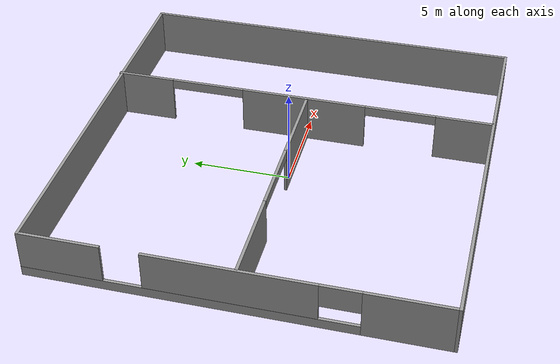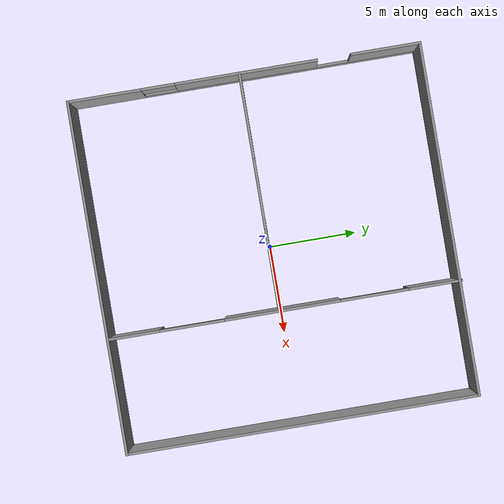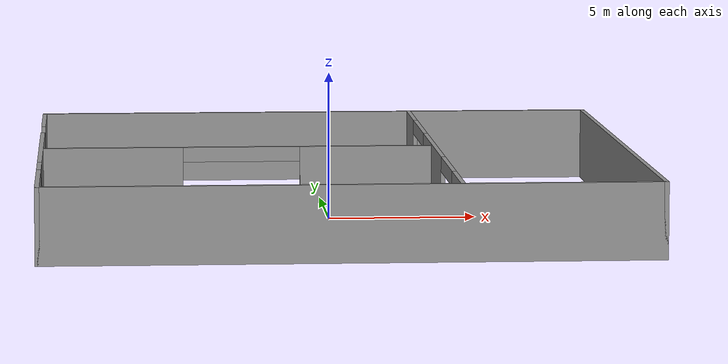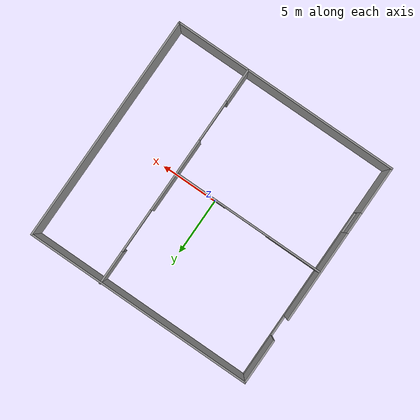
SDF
<?xml version='1.0'?>
<sdf version='1.7'>
  <model name='twohouse'>
    <pose>0.143288 0.205894 0 0 -0 0</pose>
    <link name='Wall_11'>
      <collision name='Wall_11_Collision'>
        <geometry>
          <box>
            <size>20 0.15 2.5</size>
          </box>
        </geometry>
        <pose>0 0 1.25 0 -0 0</pose>
      </collision>
      <visual name='Wall_11_Visual'>
        <pose>0 0 1.25 0 -0 0</pose>
        <geometry>
          <box>
            <size>20 0.15 2.5</size>
          </box>
        </geometry>
        <material>
          <script>
            <uri>file://media/materials/scripts/gazebo.material</uri>
            <name>Gazebo/Grey</name>
          </script>
          <ambient>1 1 1 1</ambient>
        </material>
        <meta>
          <layer>0</layer>
        </meta>
      </visual>
      <pose>-0 -9.95811 0 0 -0 0</pose>
    </link>
    <link name='Wall_13'>
      <pose>3.47079 0.033112 0 0 -0 -1.5708</pose>
      <visual name='Wall_13_Visual_0'>
        <pose>-8.49724 0 1.25 0 -0 0</pose>
        <geometry>
          <box>
            <size>3.00553 0.15 2.5</size>
          </box>
        </geometry>
        <material>
          <script>
            <uri>file://media/materials/scripts/gazebo.material</uri>
            <name>Gazebo/Grey</name>
          </script>
          <ambient>1 1 1 1</ambient>
        </material>
        <meta>
          <layer>0</layer>
        </meta>
      </visual>
      <collision name='Wall_13_Collision_0'>
        <geometry>
          <box>
            <size>3.00553 0.15 2.5</size>
          </box>
        </geometry>
        <pose>-8.49724 0 1.25 0 -0 0</pose>
      </collision>
      <visual name='Wall_13_Visual_1'>
        <pose>0.130698 0 1.25 0 -0 0</pose>
        <geometry>
          <box>
            <size>6.54383 0.15 2.5</size>
          </box>
        </geometry>
        <material>
          <script>
            <uri>file://media/materials/scripts/gazebo.material</uri>
            <name>Gazebo/Grey</name>
          </script>
          <ambient>1 1 1 1</ambient>
        </material>
        <meta>
          <layer>0</layer>
        </meta>
      </visual>
      <collision name='Wall_13_Collision_1'>
        <geometry>
          <box>
            <size>6.54383 0.15 2.5</size>
          </box>
        </geometry>
        <pose>0.130698 0 1.25 0 -0 0</pose>
      </collision>
      <visual name='Wall_13_Visual_2'>
        <pose>8.52679 0 1.25 0 -0 0</pose>
        <geometry>
          <box>
            <size>2.94641 0.15 2.5</size>
          </box>
        </geometry>
        <material>
          <script>
            <uri>file://media/materials/scripts/gazebo.material</uri>
            <name>Gazebo/Grey</name>
          </script>
          <ambient>1 1 1 1</ambient>
        </material>
        <meta>
          <layer>0</layer>
        </meta>
      </visual>
      <collision name='Wall_13_Collision_2'>
        <geometry>
          <box>
            <size>2.94641 0.15 2.5</size>
          </box>
        </geometry>
        <pose>8.52679 0 1.25 0 -0 0</pose>
      </collision>
      <visual name='Wall_13_Visual_3'>
        <pose>-5.06784 0 2.25 0 -0 0</pose>
        <geometry>
          <box>
            <size>3.85326 0.15 0.5</size>
          </box>
        </geometry>
        <material>
          <script>
            <uri>file://media/materials/scripts/gazebo.material</uri>
            <name>Gazebo/Grey</name>
          </script>
          <ambient>1 1 1 1</ambient>
        </material>
        <meta>
          <layer>0</layer>
        </meta>
      </visual>
      <collision name='Wall_13_Collision_3'>
        <geometry>
          <box>
            <size>3.85326 0.15 0.5</size>
          </box>
        </geometry>
        <pose>-5.06784 0 2.25 0 -0 0</pose>
      </collision>
      <visual name='Wall_13_Visual_4'>
        <pose>5.2281 0 2.25 0 -0 0</pose>
        <geometry>
          <box>
            <size>3.65098 0.15 0.5</size>
          </box>
        </geometry>
        <material>
          <script>
            <uri>file://media/materials/scripts/gazebo.material</uri>
            <name>Gazebo/Grey</name>
          </script>
          <ambient>1 1 1 1</ambient>
        </material>
        <meta>
          <layer>0</layer>
        </meta>
      </visual>
      <collision name='Wall_13_Collision_4'>
        <geometry>
          <box>
            <size>3.65098 0.15 0.5</size>
          </box>
        </geometry>
        <pose>5.2281 0 2.25 0 -0 0</pose>
      </collision>
    </link>
    <link name='Wall_16'>
      <pose>-3.2653 -0.277149 0 0 -0 3.14159</pose>
      <visual name='Wall_16_Visual_0'>
        <pose>-4.37677 0 1.25 0 -0 0</pose>
        <geometry>
          <box>
            <size>4.49647 0.15 2.5</size>
          </box>
        </geometry>
        <material>
          <script>
            <uri>file://media/materials/scripts/gazebo.material</uri>
            <name>Gazebo/Grey</name>
          </script>
          <ambient>1 1 1 1</ambient>
        </material>
        <meta>
          <layer>0</layer>
        </meta>
      </visual>
      <collision name='Wall_16_Collision_0'>
        <geometry>
          <box>
            <size>4.49647 0.15 2.5</size>
          </box>
        </geometry>
        <pose>-4.37677 0 1.25 0 -0 0</pose>
      </collision>
      <visual name='Wall_16_Visual_1'>
        <pose>4.23656 0 1.25 0 -0 0</pose>
        <geometry>
          <box>
            <size>4.77688 0.15 2.5</size>
          </box>
        </geometry>
        <material>
          <script>
            <uri>file://media/materials/scripts/gazebo.material</uri>
            <name>Gazebo/Grey</name>
          </script>
          <ambient>1 1 1 1</ambient>
        </material>
        <meta>
          <layer>0</layer>
        </meta>
      </visual>
      <collision name='Wall_16_Collision_1'>
        <geometry>
          <box>
            <size>4.77688 0.15 2.5</size>
          </box>
        </geometry>
        <pose>4.23656 0 1.25 0 -0 0</pose>
      </collision>
      <visual name='Wall_16_Visual_2'>
        <pose>-0.140208 0 2.25 0 -0 0</pose>
        <geometry>
          <box>
            <size>3.97665 0.15 0.5</size>
          </box>
        </geometry>
        <material>
          <script>
            <uri>file://media/materials/scripts/gazebo.material</uri>
            <name>Gazebo/Grey</name>
          </script>
          <ambient>1 1 1 1</ambient>
        </material>
        <meta>
          <layer>0</layer>
        </meta>
      </visual>
      <collision name='Wall_16_Collision_2'>
        <geometry>
          <box>
            <size>3.97665 0.15 0.5</size>
          </box>
        </geometry>
        <pose>-0.140208 0 2.25 0 -0 0</pose>
      </collision>
    </link>
    <link name='Wall_7'>
      <pose>-9.925 -0.033113 0 0 -0 1.5708</pose>
      <visual name='Wall_7_Visual_0'>
        <pose>-7.89219 0 1.25 0 -0 0</pose>
        <geometry>
          <box>
            <size>4.21562 0.15 2.5</size>
          </box>
        </geometry>
        <material>
          <script>
            <uri>file://media/materials/scripts/gazebo.material</uri>
            <name>Gazebo/Grey</name>
          </script>
          <ambient>1 1 1 1</ambient>
        </material>
        <meta>
          <layer>0</layer>
        </meta>
      </visual>
      <collision name='Wall_7_Collision_0'>
        <geometry>
          <box>
            <size>4.21562 0.15 2.5</size>
          </box>
        </geometry>
        <pose>-7.89219 0 1.25 0 -0 0</pose>
      </collision>
      <visual name='Wall_7_Visual_1'>
        <pose>2.10781 0 0.25 0 -0 0</pose>
        <geometry>
          <box>
            <size>15.7844 0.15 0.5</size>
          </box>
        </geometry>
        <material>
          <script>
            <uri>file://media/materials/scripts/gazebo.material</uri>
            <name>Gazebo/Grey</name>
          </script>
          <ambient>1 1 1 1</ambient>
        </material>
        <meta>
          <layer>0</layer>
        </meta>
      </visual>
      <collision name='Wall_7_Collision_1'>
        <geometry>
          <box>
            <size>15.7844 0.15 0.5</size>
          </box>
        </geometry>
        <pose>2.10781 0 0.25 0 -0 0</pose>
      </collision>
      <visual name='Wall_7_Visual_2'>
        <pose>0.137806 0 1.5 0 -0 0</pose>
        <geometry>
          <box>
            <size>8.05977 0.15 2</size>
          </box>
        </geometry>
        <material>
          <script>
            <uri>file://media/materials/scripts/gazebo.material</uri>
            <name>Gazebo/Grey</name>
          </script>
          <ambient>1 1 1 1</ambient>
        </material>
        <meta>
          <layer>0</layer>
        </meta>
      </visual>
      <collision name='Wall_7_Collision_2'>
        <geometry>
          <box>
            <size>8.05977 0.15 2</size>
          </box>
        </geometry>
        <pose>0.137806 0 1.5 0 -0 0</pose>
      </collision>
      <visual name='Wall_7_Visual_3'>
        <pose>8.00977 0 1.5 0 -0 0</pose>
        <geometry>
          <box>
            <size>3.98046 0.15 2</size>
          </box>
        </geometry>
        <material>
          <script>
            <uri>file://media/materials/scripts/gazebo.material</uri>
            <name>Gazebo/Grey</name>
          </script>
          <ambient>1 1 1 1</ambient>
        </material>
        <meta>
          <layer>0</layer>
        </meta>
      </visual>
      <collision name='Wall_7_Collision_3'>
        <geometry>
          <box>
            <size>3.98046 0.15 2</size>
          </box>
        </geometry>
        <pose>8.00977 0 1.5 0 -0 0</pose>
      </collision>
      <visual name='Wall_7_Visual_4'>
        <pose>-4.83823 0 1.9 0 -0 0</pose>
        <geometry>
          <box>
            <size>1.8923 0.15 1.2</size>
          </box>
        </geometry>
        <material>
          <script>
            <uri>file://media/materials/scripts/gazebo.material</uri>
            <name>Gazebo/Grey</name>
          </script>
          <ambient>1 1 1 1</ambient>
        </material>
        <meta>
          <layer>0</layer>
        </meta>
      </visual>
      <collision name='Wall_7_Collision_4'>
        <geometry>
          <box>
            <size>1.8923 0.15 1.2</size>
          </box>
        </geometry>
        <pose>-4.83823 0 1.9 0 -0 0</pose>
      </collision>
      <visual name='Wall_7_Visual_5'>
        <pose>4.16769 0 1.9 0 -0 0</pose>
        <geometry>
          <box>
            <size>0 0.15 1.2</size>
          </box>
        </geometry>
        <material>
          <script>
            <uri>file://media/materials/scripts/gazebo.material</uri>
            <name>Gazebo/Grey</name>
          </script>
          <ambient>1 1 1 1</ambient>
        </material>
        <meta>
          <layer>0</layer>
        </meta>
      </visual>
      <collision name='Wall_7_Collision_5'>
        <geometry>
          <box>
            <size>0 0.15 1.2</size>
          </box>
        </geometry>
        <pose>4.16769 0 1.9 0 -0 0</pose>
      </collision>
    </link>
    <link name='Wall_8'>
      <collision name='Wall_8_Collision'>
        <geometry>
          <box>
            <size>20 0.15 2.5</size>
          </box>
        </geometry>
        <pose>0 0 1.25 0 -0 0</pose>
      </collision>
      <visual name='Wall_8_Visual'>
        <pose>0 0 1.25 0 -0 0</pose>
        <geometry>
          <box>
            <size>20 0.15 2.5</size>
          </box>
        </geometry>
        <material>
          <script>
            <uri>file://media/materials/scripts/gazebo.material</uri>
            <name>Gazebo/Grey</name>
          </script>
          <ambient>1 1 1 1</ambient>
        </material>
        <meta>
          <layer>0</layer>
        </meta>
      </visual>
      <pose>-0 9.89189 0 0 -0 0</pose>
    </link>
    <link name='Wall_9'>
      <collision name='Wall_9_Collision'>
        <geometry>
          <box>
            <size>20 0.15 2.5</size>
          </box>
        </geometry>
        <pose>0 0 1.25 0 -0 0</pose>
      </collision>
      <visual name='Wall_9_Visual'>
        <pose>0 0 1.25 0 -0 0</pose>
        <geometry>
          <box>
            <size>20 0.15 2.5</size>
          </box>
        </geometry>
        <material>
          <script>
            <uri>file://media/materials/scripts/gazebo.material</uri>
            <name>Gazebo/Grey</name>
          </script>
          <ambient>1 1 1 1</ambient>
        </material>
        <meta>
          <layer>0</layer>
        </meta>
      </visual>
      <pose>9.925 -0.033113 0 0 -0 -1.5708</pose>
    </link>
    <static>1</static>
  </model>
</sdf>
